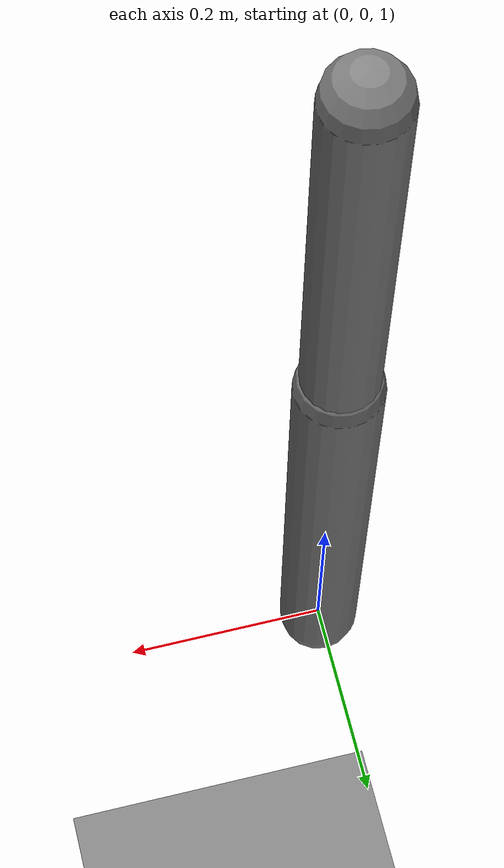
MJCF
<mujoco model="two_link_arm">
  <option gravity="0 0 -9.81" timestep="0.01"/>

  <worldbody>
    <geom type="plane" size="5 5 0.1"/>

    <body name="link1" pos="0 0 1">
      <joint name="shoulder_joint" type="hinge" axis="0 1 0"/>
      <geom type="capsule" fromto="0 0 0 0 0 0.5" size="0.04" mass="1"/>

      <body name="link2" pos="0 0 0.5">
        <joint name="elbow_joint" type="hinge" axis="0 1 0"/>
        <geom type="capsule" fromto="0 0 0 0 0 0.4" size="0.035" mass="0.8"/>
      </body>
    </body>
  </worldbody>

  <actuator>
    <motor name="shoulder_motor" joint="shoulder_joint" ctrlrange="-1 1"/>
    <motor name="elbow_motor" joint="elbow_joint" ctrlrange="-1 1"/>
  </actuator>
</mujoco>
